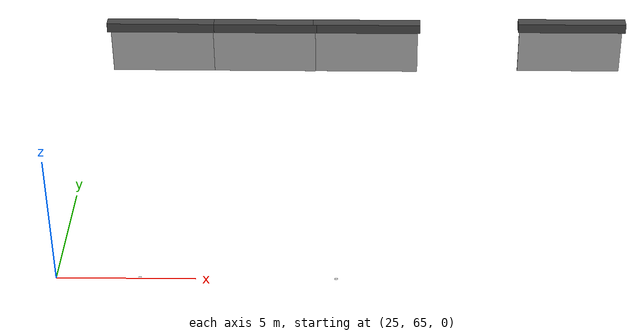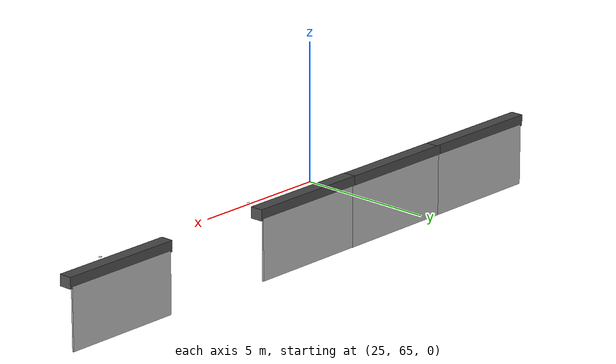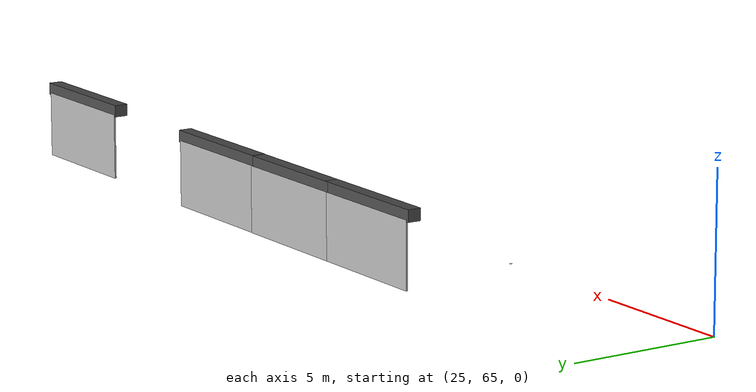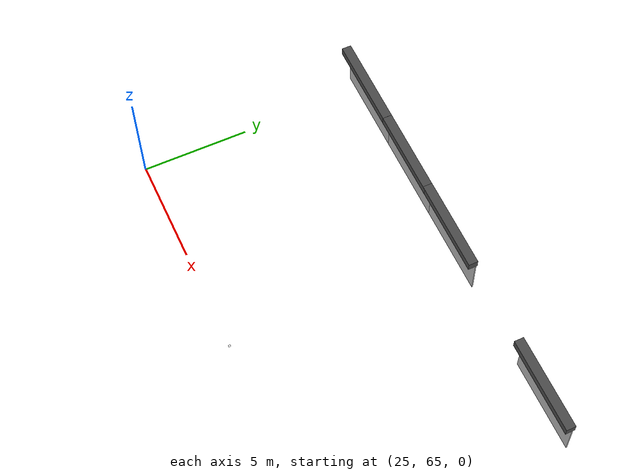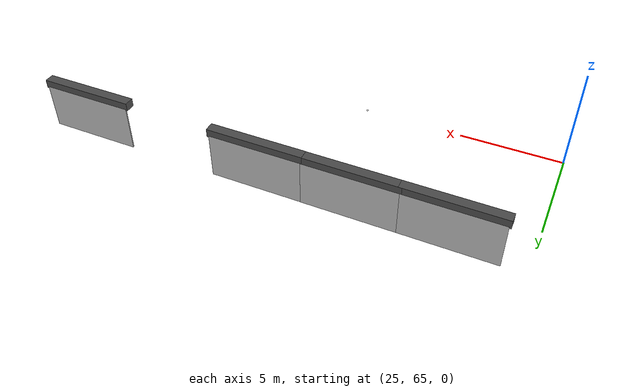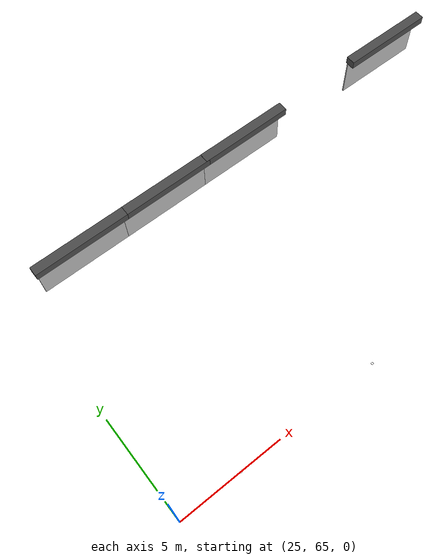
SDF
<sdf version="1.7">
 <world name="factory_ground">
  <model name="marker_31">
   <link name="marker">
    <visual name="visual">
     <geometry><box><size>0.1 0.1 1e-05</size></box></geometry>
     <material>
      <script>
       <uri>model://marker_31/materials/scripts</uri>
       <uri>model://marker_31/materials/textures</uri>
       <name>marker_material31</name>
      </script>
      <ambient>1 1 1 1</ambient>
      <diffuse>1 1 1 1</diffuse>
      <specular>0 0 0 1</specular>
      <emissive>1 1 1 0</emissive>
     </material>
    </visual>
    <collision name="collision"><geometry><box><size>0.1 0.1 1e-05</size></box></geometry></collision>
   </link>
   <link name="marker_pad">
    <pose relative_to="marker">0 0 -1e-05 0 -0 0</pose>
    <visual name="visual">
     <geometry><box><size>0.1 0.1 1e-05</size></box></geometry>
     <material>
      <lighting>1</lighting>
      <script><uri>file://media/materials/scripts/gazebo.material</uri><name>Gazebo/White</name></script>
      <ambient>0.3 0.3 0.3 1</ambient>
      <diffuse>0.7 0.7 0.7 1</diffuse>
      <specular>0.01 0.01 0.01 1</specular>
      <emissive>1 1 1 0</emissive>
     </material>
    </visual>
    <collision name="collision"><geometry><box><size>0.1 0.1 1e-05</size></box></geometry></collision>
   </link>
   <joint name="marker_JOINT_marker_pad" type="revolute">
    <parent>marker</parent>
    <child>marker_pad</child>
    <axis>
     <xyz>0 0 1</xyz>
     <limit><upper>0</upper><lower>0</lower></limit>
     <dynamics><spring_reference>0</spring_reference><spring_stiffness>0</spring_stiffness></dynamics>
    </axis>
   </joint>
   <static>1</static>
   <pose>35 65 0.046333 0 -0 0</pose>
  </model>
  <model name="marker_32">
   <link name="marker">
    <visual name="visual">
     <geometry><box><size>0.1 0.1 1e-05</size></box></geometry>
     <material>
      <script>
       <uri>model://marker_32/materials/scripts</uri>
       <uri>model://marker_32/materials/textures</uri>
       <name>marker_material32</name>
      </script>
      <ambient>1 1 1 1</ambient>
      <diffuse>1 1 1 1</diffuse>
      <specular>0 0 0 1</specular>
      <emissive>1 1 1 0</emissive>
     </material>
    </visual>
    <collision name="collision"><geometry><box><size>0.1 0.1 1e-05</size></box></geometry></collision>
   </link>
   <link name="marker_pad">
    <pose relative_to="marker">0 0 -1e-05 0 -0 0</pose>
    <visual name="visual">
     <geometry><box><size>0.1 0.1 1e-05</size></box></geometry>
     <material>
      <lighting>1</lighting>
      <script><uri>file://media/materials/scripts/gazebo.material</uri><name>Gazebo/White</name></script>
      <ambient>0.3 0.3 0.3 1</ambient>
      <diffuse>0.7 0.7 0.7 1</diffuse>
      <specular>0.01 0.01 0.01 1</specular>
      <emissive>1 1 1 0</emissive>
     </material>
    </visual>
    <collision name="collision"><geometry><box><size>0.1 0.1 1e-05</size></box></geometry></collision>
   </link>
   <joint name="marker_JOINT_marker_pad" type="revolute">
    <parent>marker</parent>
    <child>marker_pad</child>
    <axis>
     <xyz>0 0 1</xyz>
     <limit><upper>0</upper><lower>0</lower></limit>
     <dynamics><spring_reference>0</spring_reference><spring_stiffness>0</spring_stiffness></dynamics>
    </axis>
   </joint>
   <static>1</static>
   <pose>28 65 0.046333 0 -0 0</pose>
  </model>
  <model name="garage_door">
   <link name="link">
    <visual name="visual">
     <geometry><box><size>0.05 4 2</size></box></geometry>
     <material>
      <script>
       <uri>https://fuel.ignitionrobotics.org/1.0/ledsantos/models/garage_door/1/files/material/script</uri>
       <uri>https://fuel.ignitionrobotics.org/1.0/ledsantos/models/garage_door/1/files/material/textures</uri>
       <name>Custom/garage_door_metal</name>
      </script>
     </material>
    </visual>
   </link>
   <link name="link_0">
    <inertial>
     <mass>0.631708</mass>
     <inertia>
      <ixx>0.913425</ixx>
      <ixy>0</ixy>
      <ixz>0</ixz>
      <iyy>0.0161823</iyy>
      <iyz>0</iyz>
      <izz>0.915671</izz>
     </inertia>
    </inertial>
    <pose>0.186516 0 1.12272 0 -0 0</pose>
    <visual name="visual">
     <geometry><box><size>0.418365 4.1496 0.363828</size></box></geometry>
     <material>
      <lighting>1</lighting>
      <script><uri>file://media/materials/scripts/gazebo.material</uri><name>Gazebo/DarkGrey</name></script>
     </material>
    </visual>
    <collision name="collision">
     <geometry><box><size>0.418365 4.15 0.363828</size></box></geometry>
     <surface>
      <friction>
       <ode><mu>1</mu><mu2>1</mu2><fdir1>0 0 0</fdir1><slip1>0</slip1><slip2>0</slip2></ode>
       <torsional>
        <coefficient>1</coefficient>
        <patch_radius>0</patch_radius>
        <surface_radius>0</surface_radius>
        <use_patch_radius>1</use_patch_radius>
        <ode><slip>0</slip></ode>
       </torsional>
      </friction>
      <bounce><restitution_coefficient>0</restitution_coefficient><threshold>1e+06</threshold></bounce>
      <contact>
       <collide_without_contact>0</collide_without_contact>
       <collide_without_contact_bitmask>1</collide_without_contact_bitmask>
       <collide_bitmask>1</collide_bitmask>
       <ode>
        <soft_cfm>0</soft_cfm>
        <soft_erp>0.2</soft_erp>
        <kp>1e+13</kp>
        <kd>1</kd>
        <max_vel>0.01</max_vel>
        <min_depth>0</min_depth>
       </ode>
       <bullet>
        <split_impulse>1</split_impulse>
        <split_impulse_penetration_threshold>-0.01</split_impulse_penetration_threshold>
        <soft_cfm>0</soft_cfm>
        <soft_erp>0.2</soft_erp>
        <kp>1e+13</kp>
        <kd>1</kd>
       </bullet>
      </contact>
     </surface>
    </collision>
   </link>
   <static>1</static>
   <pose>43.9579 75.0046 3.69084 0 0 -1.5708</pose>
  </model>
  <model name="garage_door_clone_1">
   <link name="link">
    <visual name="visual">
     <geometry><box><size>0.05 4 2</size></box></geometry>
     <material>
      <script>
       <uri>https://fuel.ignitionrobotics.org/1.0/ledsantos/models/garage_door/1/files/material/script</uri>
       <uri>https://fuel.ignitionrobotics.org/1.0/ledsantos/models/garage_door/1/files/material/textures</uri>
       <name>Custom/garage_door_metal</name>
      </script>
     </material>
    </visual>
   </link>
   <link name="link_0">
    <inertial>
     <mass>0.631708</mass>
     <inertia>
      <ixx>0.913425</ixx>
      <ixy>0</ixy>
      <ixz>0</ixz>
      <iyy>0.0161823</iyy>
      <iyz>0</iyz>
      <izz>0.915671</izz>
     </inertia>
    </inertial>
    <pose>0.186516 0 1.12272 0 -0 0</pose>
    <visual name="visual">
     <geometry><box><size>0.418365 4.1496 0.363828</size></box></geometry>
     <material>
      <lighting>1</lighting>
      <script><uri>file://media/materials/scripts/gazebo.material</uri><name>Gazebo/DarkGrey</name></script>
     </material>
    </visual>
    <collision name="collision">
     <geometry><box><size>0.418365 4.15 0.363828</size></box></geometry>
     <surface>
      <friction>
       <ode><mu>1</mu><mu2>1</mu2><fdir1>0 0 0</fdir1><slip1>0</slip1><slip2>0</slip2></ode>
       <torsional>
        <coefficient>1</coefficient>
        <patch_radius>0</patch_radius>
        <surface_radius>0</surface_radius>
        <use_patch_radius>1</use_patch_radius>
        <ode><slip>0</slip></ode>
       </torsional>
      </friction>
      <bounce><restitution_coefficient>0</restitution_coefficient><threshold>1e+06</threshold></bounce>
      <contact>
       <collide_without_contact>0</collide_without_contact>
       <collide_without_contact_bitmask>1</collide_without_contact_bitmask>
       <collide_bitmask>1</collide_bitmask>
       <ode>
        <soft_cfm>0</soft_cfm>
        <soft_erp>0.2</soft_erp>
        <kp>1e+13</kp>
        <kd>1</kd>
        <max_vel>0.01</max_vel>
        <min_depth>0</min_depth>
       </ode>
       <bullet>
        <split_impulse>1</split_impulse>
        <split_impulse_penetration_threshold>-0.01</split_impulse_penetration_threshold>
        <soft_cfm>0</soft_cfm>
        <soft_erp>0.2</soft_erp>
        <kp>1e+13</kp>
        <kd>1</kd>
       </bullet>
      </contact>
     </surface>
    </collision>
   </link>
   <static>1</static>
   <pose>28 75 3.61146 0 0 -1.5708</pose>
  </model>
  <model name="garage_door_clone_2">
   <link name="link">
    <visual name="visual">
     <geometry><box><size>0.05 4 2</size></box></geometry>
     <material>
      <script>
       <uri>https://fuel.ignitionrobotics.org/1.0/ledsantos/models/garage_door/1/files/material/script</uri>
       <uri>https://fuel.ignitionrobotics.org/1.0/ledsantos/models/garage_door/1/files/material/textures</uri>
       <name>Custom/garage_door_metal</name>
      </script>
     </material>
    </visual>
   </link>
   <link name="link_0">
    <inertial>
     <mass>0.631708</mass>
     <inertia>
      <ixx>0.913425</ixx>
      <ixy>0</ixy>
      <ixz>0</ixz>
      <iyy>0.0161823</iyy>
      <iyz>0</iyz>
      <izz>0.915671</izz>
     </inertia>
    </inertial>
    <pose>0.186516 0 1.12272 0 -0 0</pose>
    <visual name="visual">
     <geometry><box><size>0.418365 4.1496 0.363828</size></box></geometry>
     <material>
      <lighting>1</lighting>
      <script><uri>file://media/materials/scripts/gazebo.material</uri><name>Gazebo/DarkGrey</name></script>
     </material>
    </visual>
    <collision name="collision">
     <geometry><box><size>0.418365 4.15 0.363828</size></box></geometry>
     <surface>
      <friction>
       <ode><mu>1</mu><mu2>1</mu2><fdir1>0 0 0</fdir1><slip1>0</slip1><slip2>0</slip2></ode>
       <torsional>
        <coefficient>1</coefficient>
        <patch_radius>0</patch_radius>
        <surface_radius>0</surface_radius>
        <use_patch_radius>1</use_patch_radius>
        <ode><slip>0</slip></ode>
       </torsional>
      </friction>
      <bounce><restitution_coefficient>0</restitution_coefficient><threshold>1e+06</threshold></bounce>
      <contact>
       <collide_without_contact>0</collide_without_contact>
       <collide_without_contact_bitmask>1</collide_without_contact_bitmask>
       <collide_bitmask>1</collide_bitmask>
       <ode>
        <soft_cfm>0</soft_cfm>
        <soft_erp>0.2</soft_erp>
        <kp>1e+13</kp>
        <kd>1</kd>
        <max_vel>0.01</max_vel>
        <min_depth>0</min_depth>
       </ode>
       <bullet>
        <split_impulse>1</split_impulse>
        <split_impulse_penetration_threshold>-0.01</split_impulse_penetration_threshold>
        <soft_cfm>0</soft_cfm>
        <soft_erp>0.2</soft_erp>
        <kp>1e+13</kp>
        <kd>1</kd>
       </bullet>
      </contact>
     </surface>
    </collision>
   </link>
   <static>1</static>
   <pose>32 75 3.61132 0 0 -1.5708</pose>
  </model>
  <model name="garage_door_clone_3">
   <link name="link">
    <visual name="visual">
     <geometry><box><size>0.05 4 2</size></box></geometry>
     <material>
      <script>
       <uri>https://fuel.ignitionrobotics.org/1.0/ledsantos/models/garage_door/1/files/material/script</uri>
       <uri>https://fuel.ignitionrobotics.org/1.0/ledsantos/models/garage_door/1/files/material/textures</uri>
       <name>Custom/garage_door_metal</name>
      </script>
     </material>
    </visual>
   </link>
   <link name="link_0">
    <inertial>
     <mass>0.631708</mass>
     <inertia>
      <ixx>0.913425</ixx>
      <ixy>0</ixy>
      <ixz>0</ixz>
      <iyy>0.0161823</iyy>
      <iyz>0</iyz>
      <izz>0.915671</izz>
     </inertia>
    </inertial>
    <pose>0.186516 0 1.12272 0 -0 0</pose>
    <visual name="visual">
     <geometry><box><size>0.418365 4.1496 0.363828</size></box></geometry>
     <material>
      <lighting>1</lighting>
      <script><uri>file://media/materials/scripts/gazebo.material</uri><name>Gazebo/DarkGrey</name></script>
     </material>
    </visual>
    <collision name="collision">
     <geometry><box><size>0.418365 4.15 0.363828</size></box></geometry>
     <surface>
      <friction>
       <ode><mu>1</mu><mu2>1</mu2><fdir1>0 0 0</fdir1><slip1>0</slip1><slip2>0</slip2></ode>
       <torsional>
        <coefficient>1</coefficient>
        <patch_radius>0</patch_radius>
        <surface_radius>0</surface_radius>
        <use_patch_radius>1</use_patch_radius>
        <ode><slip>0</slip></ode>
       </torsional>
      </friction>
      <bounce><restitution_coefficient>0</restitution_coefficient><threshold>1e+06</threshold></bounce>
      <contact>
       <collide_without_contact>0</collide_without_contact>
       <collide_without_contact_bitmask>1</collide_without_contact_bitmask>
       <collide_bitmask>1</collide_bitmask>
       <ode>
        <soft_cfm>0</soft_cfm>
        <soft_erp>0.2</soft_erp>
        <kp>1e+13</kp>
        <kd>1</kd>
        <max_vel>0.01</max_vel>
        <min_depth>0</min_depth>
       </ode>
       <bullet>
        <split_impulse>1</split_impulse>
        <split_impulse_penetration_threshold>-0.01</split_impulse_penetration_threshold>
        <soft_cfm>0</soft_cfm>
        <soft_erp>0.2</soft_erp>
        <kp>1e+13</kp>
        <kd>1</kd>
       </bullet>
      </contact>
     </surface>
    </collision>
   </link>
   <static>1</static>
   <pose>36 75 3.61823 0 0 -1.5708</pose>
  </model>
 </world>
</sdf>
